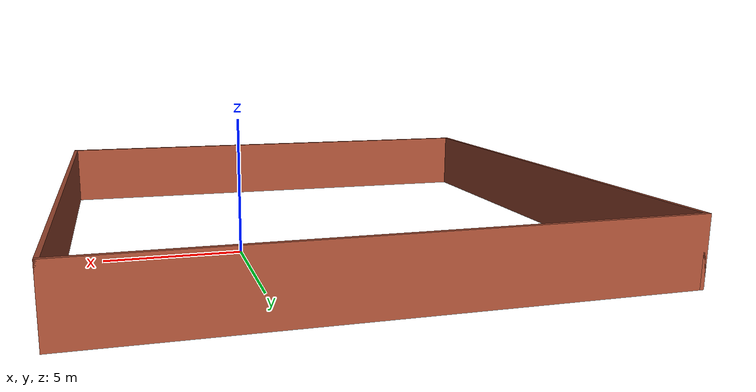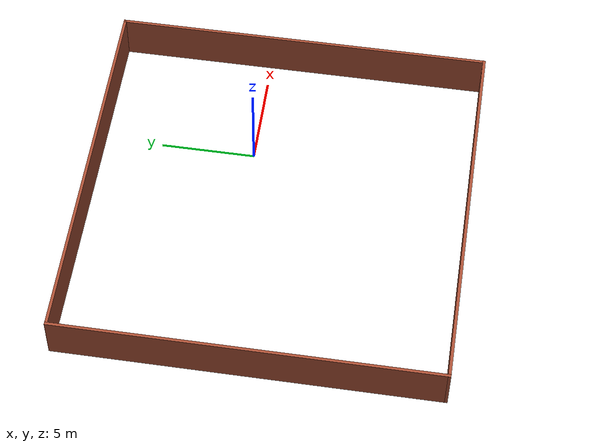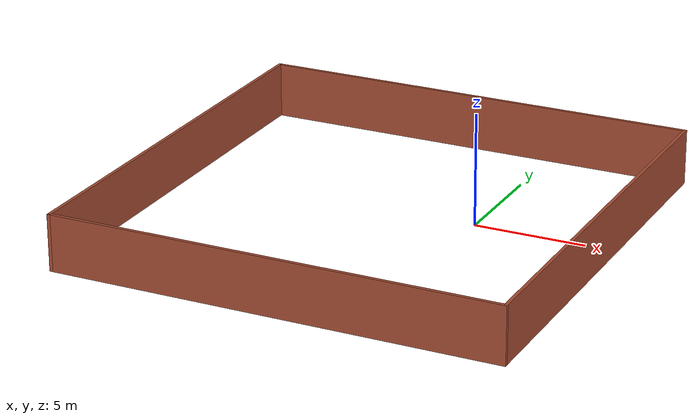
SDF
<?xml version='1.0'?>
<sdf version='1.7'>
  <model name='wall2x2'>
    <pose>-3.59046 -1.75371 0 0 -0 0</pose>
    <link name='Wall_10'>
      <collision name='Wall_10_Collision'>
        <geometry>
          <box>
            <size>20 0.15 2.5</size>
          </box>
        </geometry>
        <pose>0 0 1.25 0 -0 0</pose>
      </collision>
      <visual name='Wall_10_Visual'>
        <pose>0 0 1.25 0 -0 0</pose>
        <geometry>
          <box>
            <size>20 0.15 2.5</size>
          </box>
        </geometry>
        <material>
          <script>
            <uri>file://media/materials/scripts/gazebo.material</uri>
            <name>Gazebo/Bricks</name>
          </script>
          <ambient>1 1 1 1</ambient>
        </material>
        <meta>
          <layer>0</layer>
        </meta>
      </visual>
      <pose>-0 -9.925 0 0 -0 3.14159</pose>
    </link>
    <link name='Wall_11'>
      <collision name='Wall_11_Collision'>
        <geometry>
          <box>
            <size>20 0.15 2.5</size>
          </box>
        </geometry>
        <pose>0 0 1.25 0 -0 0</pose>
      </collision>
      <visual name='Wall_11_Visual'>
        <pose>0 0 1.25 0 -0 0</pose>
        <geometry>
          <box>
            <size>20 0.15 2.5</size>
          </box>
        </geometry>
        <material>
          <script>
            <uri>file://media/materials/scripts/gazebo.material</uri>
            <name>Gazebo/Bricks</name>
          </script>
          <ambient>1 1 1 1</ambient>
        </material>
        <meta>
          <layer>0</layer>
        </meta>
      </visual>
      <pose>-9.925 -0 0 0 -0 1.5708</pose>
    </link>
    <link name='Wall_8'>
      <collision name='Wall_8_Collision'>
        <geometry>
          <box>
            <size>20 0.15 2.5</size>
          </box>
        </geometry>
        <pose>0 0 1.25 0 -0 0</pose>
      </collision>
      <visual name='Wall_8_Visual'>
        <pose>0 0 1.25 0 -0 0</pose>
        <geometry>
          <box>
            <size>20 0.15 2.5</size>
          </box>
        </geometry>
        <material>
          <script>
            <uri>file://media/materials/scripts/gazebo.material</uri>
            <name>Gazebo/Bricks</name>
          </script>
          <ambient>1 1 1 1</ambient>
        </material>
        <meta>
          <layer>0</layer>
        </meta>
      </visual>
      <pose>-0 9.925 0 0 -0 0</pose>
    </link>
    <link name='Wall_9'>
      <collision name='Wall_9_Collision'>
        <geometry>
          <box>
            <size>20 0.15 2.5</size>
          </box>
        </geometry>
        <pose>0 0 1.25 0 -0 0</pose>
      </collision>
      <visual name='Wall_9_Visual'>
        <pose>0 0 1.25 0 -0 0</pose>
        <geometry>
          <box>
            <size>20 0.15 2.5</size>
          </box>
        </geometry>
        <material>
          <script>
            <uri>file://media/materials/scripts/gazebo.material</uri>
            <name>Gazebo/Bricks</name>
          </script>
          <ambient>1 1 1 1</ambient>
        </material>
        <meta>
          <layer>0</layer>
        </meta>
      </visual>
      <pose>9.925 -0 0 0 -0 -1.5708</pose>
    </link>
    <static>1</static>
  </model>
</sdf>
